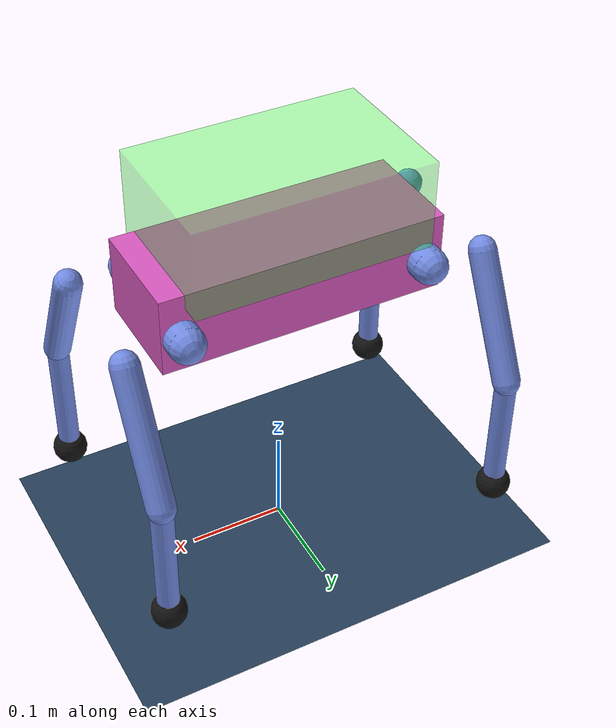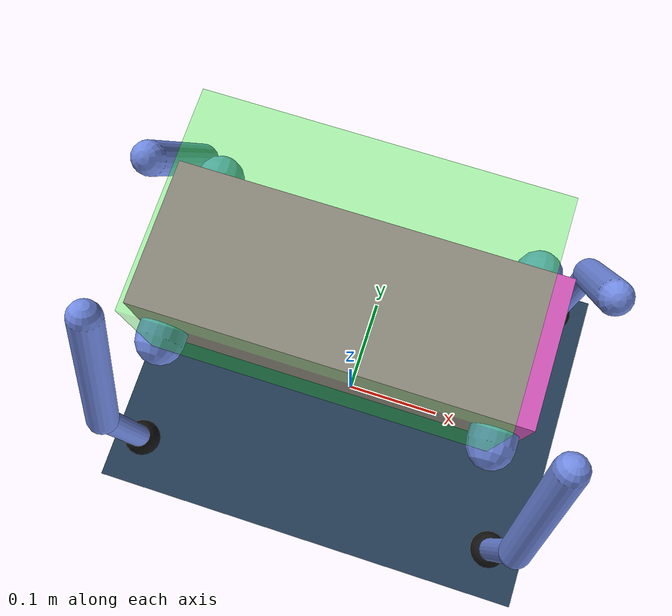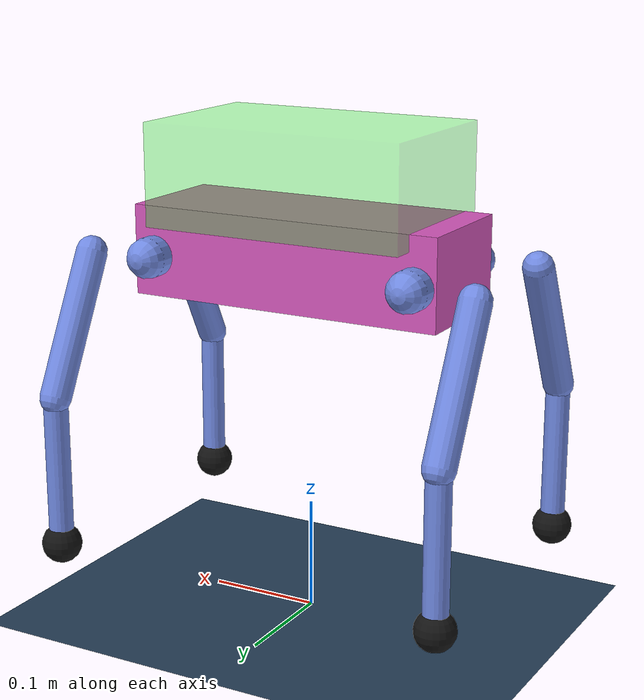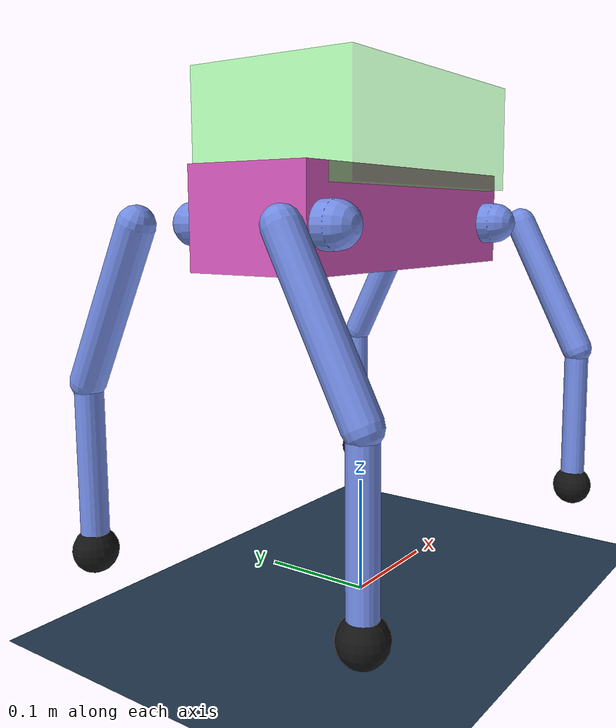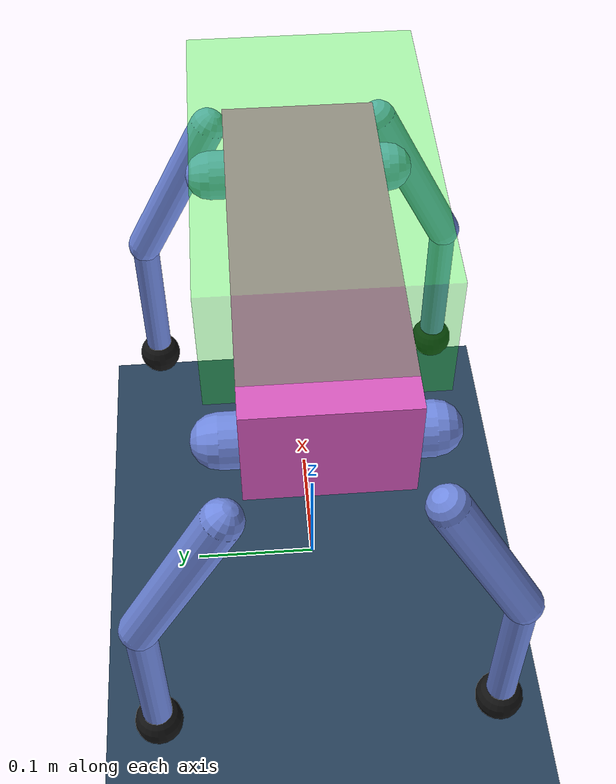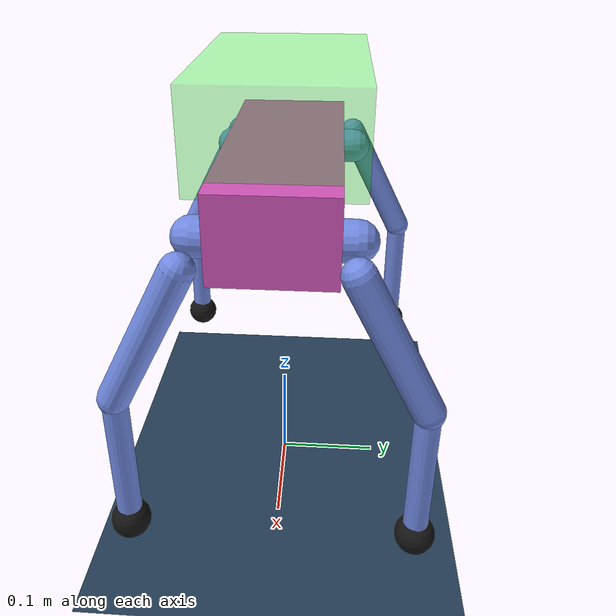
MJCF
<mujoco model="white_tigger_simple">
  <option iterations="50" timestep="0.002" solver="PGS" gravity="0 0 -9.81" />

  <compiler angle="radian" eulerseq="zyx" autolimits="true" />

  <default>
    <joint limited="true" damping="0.01" armature="0.01" frictionloss="0.01" />
    <geom condim="4" contype="1" conaffinity="15" friction="0.9 0.2 0.2" solref="0.001 2" solimp="0.95 0.99 0.001" density="0" />
    <motor ctrllimited="true" />
    <default class="visualgeom">
      <geom contype="0" conaffinity="0" group="1" density="0" />
    </default>
  </default>

  <asset>
    <texture name="texplane" type="2d" builtin="checker"
             rgb1="0.1 0.2 0.3" rgb2="0.2 0.3 0.4"
             width="300" height="300" />
    <material name="matplane" reflectance="0.2"
              texture="texplane" texrepeat="5 5" texuniform="true" />
    <material name="bodymat" rgba="0.85 0.35 0.75 1" />
    <material name="legmat" rgba="0.45 0.55 0.9 1" />
    <material name="footmat" rgba="0.08 0.08 0.08 1" />
  </asset>

  <worldbody>
    <light directional="true" diffuse="0.6 0.6 0.7" specular="0.2 0.2 0.3" pos="0 0 5.0" dir="0 0 -1" castshadow="false" />
    <light directional="true" diffuse="0.8 0.8 0.9" specular="0.3 0.3 0.4" pos="0 0 4" dir="0 0 -1" />
    <geom name="ground" type="plane" pos="0 0 0" size="100 100 0.001" quat="1 0 0 0" material="matplane" friction="0.8 0.8 0.5" solref="0.0005 2" solimp="0.95 0.99 0.001" />
    <camera name="fixed" pos="0 -3.0 0.83" xyaxes="1 0 0 0 0 1" />
    <camera name="track" mode="trackcom" pos="0 -3.0 0.83" xyaxes="1 0 0 0 0 1" />

    <body name="root" pos="0 0 0.32965542295949457" quat="1 0 0 0">
      <freejoint name="root" />
      <inertial pos="0 0 0" mass="3.5" diaginertia="0.0129 0.0428 0.0488" />
      <site name="imu_sensor" size="0.01" pos="0 0 0" />
      <geom name="base_collision" type="box" size="0.145 0.055 0.04" material="bodymat" />

      <body name="fr_hip_Link" pos="0.1253 -0.039269 -0.004">
        <inertial pos="0.0513844 0.000260068 4.15397e-05" quat="0.458209 0.457541 0.537925 0.539757" mass="0.340437" diaginertia="0.000173064 0.000127555 0.000101583" />
        <joint name="fr_hip_joint" pos="0 0 0" axis="1 0 0" range="-0.8 0.8" actuatorfrcrange="-80 80" damping="0.01" frictionloss="0.05" />
        <geom name="fr_hip_collision" type="capsule" fromto="0 0 0 0 -0.0265 0" size="0.018" material="legmat" />
        <body name="fr_thigh_Link" pos="0.059 -0.0265 0">
          <inertial pos="-0.00013781 -0.033735 -0.0050592" quat="0.704089 0.0262749 0.0256555 0.709161" mass="0.33864" diaginertia="0.000200943 0.000150209 8.67631e-05" />
          <joint name="fr_thigh_joint" pos="0 0 0" axis="0 1 0" range="-3.14 3.14" actuatorfrcrange="-80 80" damping="0.01" frictionloss="0.05" />
          <geom name="fr_thigh_collision" type="capsule" fromto="0 0 0 0 -0.06105 -0.12" size="0.014" material="legmat" />
          <body name="fr_calf_Link" pos="0 -0.06105 -0.12">
            <inertial pos="0.00973774 -1.29057e-05 -0.0786146" quat="0.707407 -0.0170098 -0.0169404 0.706398" mass="0.0479189" diaginertia="0.000105994 0.000104495 2.77014e-06" />
            <joint name="fr_calf_joint" pos="0 0 0" axis="0 1 0" range="-2.64 -0.5" actuatorfrcrange="-80 80" damping="0.01" frictionloss="0.05" />
            <geom name="fr_calf_collision" type="capsule" fromto="0 0 0 -0.000030082 0 -0.1358" size="0.011" material="legmat" />
            <geom name="fr_foot_collision" type="sphere" pos="-0.000030082 0 -0.1358" size="0.018" material="footmat" friction="0.9 0.2 0.2" />
          </body>
        </body>
      </body>

      <body name="fl_hip_Link" pos="0.1253 0.040731 -0.004">
        <inertial pos="0.051352 -0.00026007 4.1551e-05" quat="0.538038 0.539445 0.458794 0.457189" mass="0.34044" diaginertia="0.000173052 0.00012756 0.000101598" />
        <joint name="fl_hip_joint" pos="0 0 0" axis="1 0 0" range="-0.8 0.8" actuatorfrcrange="-80 80" damping="0.01" frictionloss="0.05" />
        <geom name="fl_hip_collision" type="capsule" fromto="0 0 0 0 0.0265 0" size="0.018" material="legmat" />
        <body name="fl_thigh_Link" pos="0.059 0.0265 0">
          <inertial pos="-8.81413e-05 0.0337409 -0.00509346" quat="0.708738 0.025685 0.0260514 0.704523" mass="0.338707" diaginertia="0.000201038 0.000150347 8.67305e-05" />
          <joint name="fl_thigh_joint" pos="0 0 0" axis="0 1 0" range="-3.14 3.14" actuatorfrcrange="-80 80" damping="0.01" frictionloss="0.05" />
          <geom name="fl_thigh_collision" type="capsule" fromto="0 0 0 0 0.06105 -0.12" size="0.014" material="legmat" />
          <body name="fl_calf_Link" pos="0 0.06105 -0.12">
            <inertial pos="0.00976003 -1.29059e-05 -0.0786135" quat="0.707409 -0.017015 -0.0169456 0.706397" mass="0.0479193" diaginertia="0.000105995 0.000104495 2.77092e-06" />
            <joint name="fl_calf_joint" pos="0 0 0" axis="0 1 0" range="-2.64 -0.5" actuatorfrcrange="-80 80" damping="0.01" frictionloss="0.05" />
            <geom name="fl_calf_collision" type="capsule" fromto="0 0 0 -0.000030082 0 -0.1358" size="0.011" material="legmat" />
            <geom name="fl_foot_collision" type="sphere" pos="-0.000030082 0 -0.1358" size="0.018" material="footmat" friction="0.9 0.2 0.2" />
          </body>
        </body>
      </body>

      <body name="br_hip_Link" pos="-0.1251 -0.039269 -0.004">
        <inertial pos="-0.05141 0.00025902 1.5824e-05" quat="0.538006 0.539517 0.45866 0.457277" mass="0.34044" diaginertia="0.00017305 0.00012741 0.00010174" />
        <joint name="br_hip_joint" pos="0 0 0" axis="1 0 0" range="-0.8 0.8" actuatorfrcrange="-80 80" damping="0.01" frictionloss="0.05" />
        <geom name="br_hip_collision" type="capsule" fromto="0 0 0 0 -0.0265 0" size="0.018" material="legmat" />
        <body name="br_thigh_Link" pos="-0.059 -0.0265 0">
          <inertial pos="-0.000175864 -0.0337353 -0.00510918" quat="0.704224 0.0250301 0.0247206 0.709106" mass="0.338644" diaginertia="0.00020094 0.000150136 8.68391e-05" />
          <joint name="br_thigh_joint" pos="0 0 0" axis="0 1 0" range="-3.14 3.14" actuatorfrcrange="-80 80" damping="0.01" frictionloss="0.05" />
          <geom name="br_thigh_collision" type="capsule" fromto="0 0 0 -0.000030082 -0.06105 -0.12" size="0.014" material="legmat" />
          <body name="br_calf_Link" pos="-0.000030082 -0.06105 -0.12">
            <inertial pos="0.0097567 -1.76484e-06 -0.0786146" quat="0.707196 -0.0169897 -0.0169353 0.70661" mass="0.0479194" diaginertia="0.000105993 0.000104495 2.76837e-06" />
            <joint name="br_calf_joint" pos="0 0 0" axis="0 1 0" range="-2.64 -0.5" actuatorfrcrange="-80 80" damping="0.01" frictionloss="0.05" />
            <geom name="br_calf_collision" type="capsule" fromto="0 0 0 0 0 -0.135802" size="0.011" material="legmat" />
            <geom name="br_foot_collision" type="sphere" pos="0 0 -0.135802" size="0.018" material="footmat" friction="0.9 0.2 0.2" />
          </body>
        </body>
      </body>

      <body name="bl_hip_Link" pos="-0.1251 0.040731 -0.004">
        <inertial pos="-0.05141 -0.00025986 -1.6754e-05" quat="0.458667 0.457263 0.537993 0.539535" mass="0.34044" diaginertia="0.00017305 0.00012741 0.00010174" />
        <joint name="bl_hip_joint" pos="0 0 0" axis="1 0 0" range="-0.8 0.8" actuatorfrcrange="-80 80" damping="0.01" frictionloss="0.05" />
        <geom name="bl_hip_collision" type="capsule" fromto="0 0 0 0 0.0265 0" size="0.018" material="legmat" />
        <body name="bl_thigh_Link" pos="-0.059 0.0265 0">
          <inertial pos="-0.000174634 0.0337409 -0.00510805" quat="0.709125 0.0257793 0.0264288 0.704115" mass="0.338707" diaginertia="0.000201038 0.000150274 8.68025e-05" />
          <joint name="bl_thigh_joint" pos="0 0 0" axis="0 1 0" range="-3.14 3.14" actuatorfrcrange="-80 80" damping="0.01" frictionloss="0.05" />
          <geom name="bl_thigh_collision" type="capsule" fromto="0 0 0 -0.000030082 0.06105 -0.12" size="0.014" material="legmat" />
          <body name="bl_calf_Link" pos="-0.000030082 0.06105 -0.12">
            <inertial pos="0.00975672 -1.76485e-06 -0.0786143" quat="0.707196 -0.0169897 -0.0169352 0.70661" mass="0.0479193" diaginertia="0.000105993 0.000104495 2.76838e-06" />
            <joint name="bl_calf_joint" pos="0 0 0" axis="0 1 0" range="-2.64 -0.5" actuatorfrcrange="-80 80" damping="0.01" frictionloss="0.05" />
            <geom name="bl_calf_collision" type="capsule" fromto="0 0 0 0 0 -0.135802" size="0.011" material="legmat" />
            <geom name="bl_foot_collision" type="sphere" pos="0 0 -0.135802" size="0.018" material="footmat" friction="0.9 0.2 0.2" />
          </body>
        </body>
      </body>
    </body>

    <body name="estimator_box" mocap="true" pos="0 0 0.4" quat="1 0 0 0">
      <geom name="estimator_box_geom" type="box" size="0.12 0.075 0.045"
            rgba="0.1 1.0 0.1 0.35" contype="0" conaffinity="0" density="0" group="2" />
    </body>
  </worldbody>

  <contact>
    <exclude body1="root" body2="fr_hip_Link" />
    <exclude body1="root" body2="fl_hip_Link" />
    <exclude body1="root" body2="br_hip_Link" />
    <exclude body1="root" body2="bl_hip_Link" />
    <exclude body1="root" body2="fr_thigh_Link" />
    <exclude body1="root" body2="fl_thigh_Link" />
    <exclude body1="root" body2="br_thigh_Link" />
    <exclude body1="root" body2="bl_thigh_Link" />
    <exclude body1="fr_hip_Link" body2="fr_thigh_Link" />
    <exclude body1="fl_hip_Link" body2="fl_thigh_Link" />
    <exclude body1="br_hip_Link" body2="br_thigh_Link" />
    <exclude body1="bl_hip_Link" body2="bl_thigh_Link" />
    <exclude body1="fr_thigh_Link" body2="fr_calf_Link" />
    <exclude body1="fl_thigh_Link" body2="fl_calf_Link" />
    <exclude body1="br_thigh_Link" body2="br_calf_Link" />
    <exclude body1="bl_thigh_Link" body2="bl_calf_Link" />
    <exclude body1="fr_hip_Link" body2="fr_calf_Link" />
    <exclude body1="fl_hip_Link" body2="fl_calf_Link" />
    <exclude body1="br_hip_Link" body2="br_calf_Link" />
    <exclude body1="bl_hip_Link" body2="bl_calf_Link" />
  </contact>

  <keyframe>
    <key name="init_pose"
         qpos="0 0 0.26 1 0 0 0 -0.2 0.98 -2.64 0.2 0.98 -2.64 -0.2 0.98 -2.64 0.2 0.98 -2.64" />
  </keyframe>

  <actuator>
    <motor name="fr_hip_joint" joint="fr_hip_joint" ctrllimited="true" ctrlrange="-30 30" gear="1" />
    <motor name="fr_thigh_joint" joint="fr_thigh_joint" ctrllimited="true" ctrlrange="-30 30" gear="1" />
    <motor name="fr_calf_joint" joint="fr_calf_joint" ctrllimited="true" ctrlrange="-30 30" gear="1" />
    <motor name="fl_hip_joint" joint="fl_hip_joint" ctrllimited="true" ctrlrange="-30 30" gear="1" />
    <motor name="fl_thigh_joint" joint="fl_thigh_joint" ctrllimited="true" ctrlrange="-30 30" gear="1" />
    <motor name="fl_calf_joint" joint="fl_calf_joint" ctrllimited="true" ctrlrange="-30 30" gear="1" />
    <motor name="br_hip_joint" joint="br_hip_joint" ctrllimited="true" ctrlrange="-30 30" gear="1" />
    <motor name="br_thigh_joint" joint="br_thigh_joint" ctrllimited="true" ctrlrange="-30 30" gear="1" />
    <motor name="br_calf_joint" joint="br_calf_joint" ctrllimited="true" ctrlrange="-30 30" gear="1" />
    <motor name="bl_hip_joint" joint="bl_hip_joint" ctrllimited="true" ctrlrange="-30 30" gear="1" />
    <motor name="bl_thigh_joint" joint="bl_thigh_joint" ctrllimited="true" ctrlrange="-30 30" gear="1" />
    <motor name="bl_calf_joint" joint="bl_calf_joint" ctrllimited="true" ctrlrange="-30 30" gear="1" />
  </actuator>

  <sensor>
    <actuatorpos name="fr_hip_joint_p" actuator="fr_hip_joint" />
    <actuatorvel name="fr_hip_joint_v" actuator="fr_hip_joint" />
    <actuatorfrc name="fr_hip_joint_f" actuator="fr_hip_joint" noise="0.00" />
    <actuatorpos name="fr_thigh_joint_p" actuator="fr_thigh_joint" />
    <actuatorvel name="fr_thigh_joint_v" actuator="fr_thigh_joint" />
    <actuatorfrc name="fr_thigh_joint_f" actuator="fr_thigh_joint" noise="0.00" />
    <actuatorpos name="fr_calf_joint_p" actuator="fr_calf_joint" />
    <actuatorvel name="fr_calf_joint_v" actuator="fr_calf_joint" />
    <actuatorfrc name="fr_calf_joint_f" actuator="fr_calf_joint" noise="0.00" />
    <actuatorpos name="fl_hip_joint_p" actuator="fl_hip_joint" />
    <actuatorvel name="fl_hip_joint_v" actuator="fl_hip_joint" />
    <actuatorfrc name="fl_hip_joint_f" actuator="fl_hip_joint" noise="0.00" />
    <actuatorpos name="fl_thigh_joint_p" actuator="fl_thigh_joint" />
    <actuatorvel name="fl_thigh_joint_v" actuator="fl_thigh_joint" />
    <actuatorfrc name="fl_thigh_joint_f" actuator="fl_thigh_joint" noise="0.00" />
    <actuatorpos name="fl_calf_joint_p" actuator="fl_calf_joint" />
    <actuatorvel name="fl_calf_joint_v" actuator="fl_calf_joint" />
    <actuatorfrc name="fl_calf_joint_f" actuator="fl_calf_joint" noise="0.00" />
    <actuatorpos name="br_hip_joint_p" actuator="br_hip_joint" />
    <actuatorvel name="br_hip_joint_v" actuator="br_hip_joint" />
    <actuatorfrc name="br_hip_joint_f" actuator="br_hip_joint" noise="0.00" />
    <actuatorpos name="br_thigh_joint_p" actuator="br_thigh_joint" />
    <actuatorvel name="br_thigh_joint_v" actuator="br_thigh_joint" />
    <actuatorfrc name="br_thigh_joint_f" actuator="br_thigh_joint" noise="0.00" />
    <actuatorpos name="br_calf_joint_p" actuator="br_calf_joint" />
    <actuatorvel name="br_calf_joint_v" actuator="br_calf_joint" />
    <actuatorfrc name="br_calf_joint_f" actuator="br_calf_joint" noise="0.00" />
    <actuatorpos name="bl_hip_joint_p" actuator="bl_hip_joint" />
    <actuatorvel name="bl_hip_joint_v" actuator="bl_hip_joint" />
    <actuatorfrc name="bl_hip_joint_f" actuator="bl_hip_joint" noise="0.00" />
    <actuatorpos name="bl_thigh_joint_p" actuator="bl_thigh_joint" />
    <actuatorvel name="bl_thigh_joint_v" actuator="bl_thigh_joint" />
    <actuatorfrc name="bl_thigh_joint_f" actuator="bl_thigh_joint" noise="0.00" />
    <actuatorpos name="bl_calf_joint_p" actuator="bl_calf_joint" />
    <actuatorvel name="bl_calf_joint_v" actuator="bl_calf_joint" />
    <actuatorfrc name="bl_calf_joint_f" actuator="bl_calf_joint" noise="0.00" />
    <framequat name="imu_quat" objtype="site" noise="0.00" objname="imu_sensor" />
    <gyro name="imu_gyro" site="imu_sensor" noise="0.00" cutoff="34.9" />
    <accelerometer name="imu_acc" site="imu_sensor" noise="0.00" />
  </sensor>
</mujoco>
